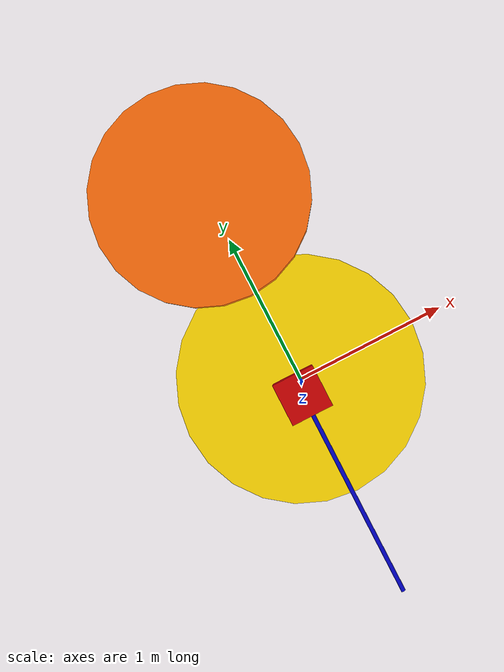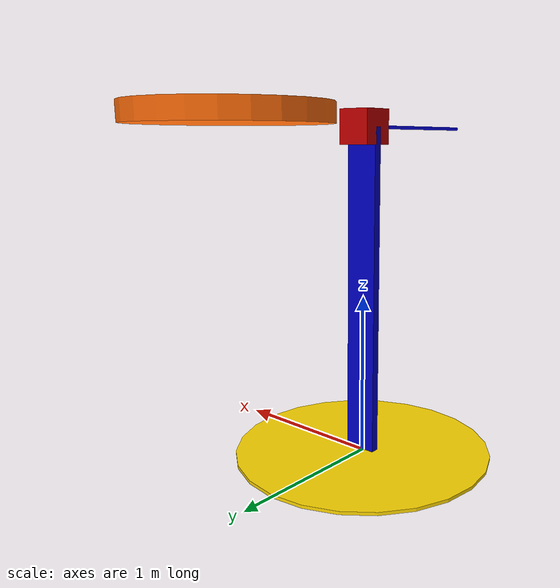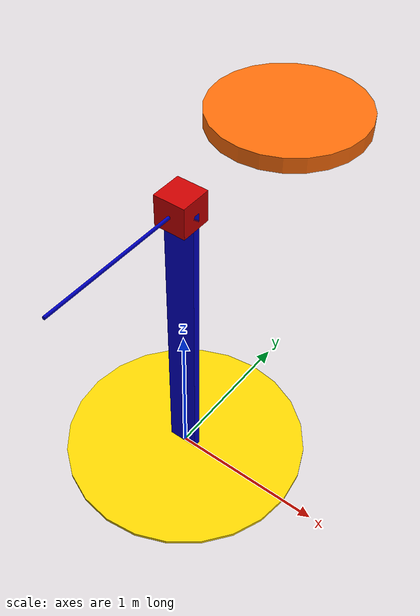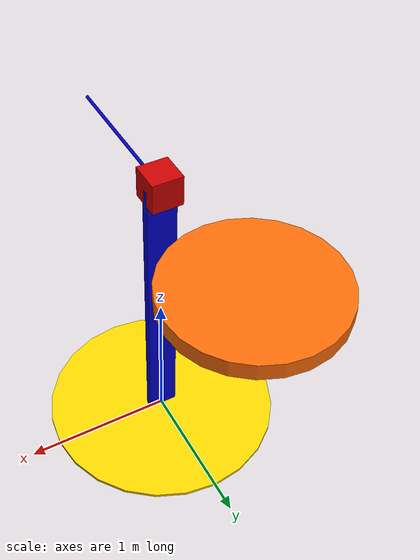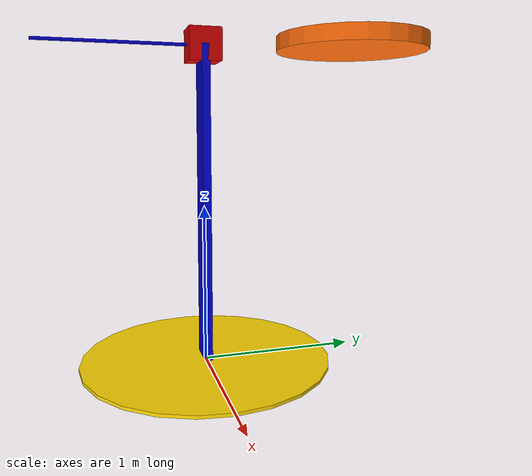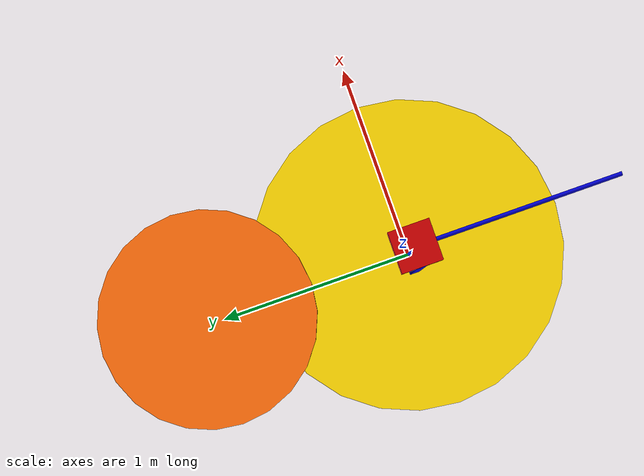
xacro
<?xml version="1.0"?>
<!-- Revolute-Revolute Manipulator -->
<robot name="spinner" xmlns:xacro="http://www.ros.org/wiki/xacro">

  <!-- Constants for robot dimensions -->
  <xacro:property name="PI" value="3.1415926535897931"/>
  <xacro:property name="mass" value="1" /> <!-- arbitrary value for mass -->
  <xacro:property name="width" value="0.1" /> <!-- Square dimensions (widthxwidth) of beams -->
  <xacro:property name="height1" value="2" /> <!-- Link 1 -->
  <xacro:property name="height2" value="1" /> <!-- Link 2 -->
  <xacro:property name="height3" value="1" /> <!-- Link 3 -->
  <xacro:property name="camera_link" value="0.05" /> <!-- Size of square 'camera' box -->
  <xacro:property name="axel_offset" value="0.05" /> <!-- Space btw top of beam and the each joint -->

  <!-- Import all Gazebo-customization elements, including Gazebo colors -->
  <xacro:include filename="$(find spinner_description)/urdf/spinner.gazebo" />
  <!-- Import Rviz colors -->
  <xacro:include filename="$(find spinner_description)/urdf/materials.xacro" />

  <!-- Used for fixing robot to Gazebo 'base_link' -->

  <link name="base">
    <collision>
      <origin xyz="0 0 0.01" rpy="0 0 0"/>
      <geometry>
	<cylinder radius="0.8" length="0.02"/>
      </geometry>
    </collision>

    <visual>
      <origin xyz="0 0 0.01" rpy="0 0 0"/>
      <geometry>
	<cylinder radius="0.8" length="0.02"/>
      </geometry>
      <material name="gold"/>
    </visual>

    <inertial>
      <origin xyz="0 0 0.01" rpy="0 0 0"/>
      <mass value="100"/>
      <inertia
	  ixx="10" ixy="0.0" ixz="0.0"
	  iyy="10" iyz="0.0"
	  izz="10"/>
    </inertial>
  </link>

  <joint name="basepole" type="fixed">
    <parent link="base"/>
    <child link="pole"/>
  </joint>

  <link name="pole">
    <collision>
      <origin xyz="0 0 1.0" rpy="0 0 0"/>
      <geometry>
	<box size="0.1 0.1 2.0"/>
      </geometry>
    </collision>

    <visual>
      <origin xyz="0 0 1.0" rpy="0 0 0"/>
      <geometry>
	<box size="0.2 0.05 2.0"/>
      </geometry>
      <material name="blue"/>
    </visual>

    <inertial>
      <origin xyz="0 0 1.0" rpy="0 0 0"/>
      <mass value="1"/>
      <inertia
	  ixx="1" ixy="0.0" ixz="0.0"
	  iyy="1" iyz="0.0"
	  izz="1"/>
    </inertial>
  </link>

  <joint name="polecam" type="fixed">
    <parent link="pole"/>
    <child link="camera_link"/>
  </joint>

  <link name="camera_link">
    <collision>
      <origin xyz="0 0 2.0" rpy="0 0 0"/>
      <geometry>
	<box size="0.1 0.1 0.1"/>
      </geometry>
    </collision>

    <visual>
      <origin xyz="0 0 2.0" rpy="0 0 0"/>
      <geometry>
	<box size="0.1 0.1 0.1"/>
      </geometry>
      <material name="grey"/>
    </visual>

    <inertial>
      <origin xyz="0 0 0" rpy="0 0 1.5707"/>
      <mass value="1"/>
      <inertia
	  ixx="1" ixy="0.0" ixz="0.0"
	  iyy="1" iyz="0.0"
	  izz="1"/>
    </inertial>
  </link>

  <link name="arm0">
    <collision>
      <origin xyz="0 0 0" rpy="0 0 0"/>
      <geometry>
	<box size="0.2 0.2 0.2"/>
      </geometry>
    </collision>

    <visual>
      <origin xyz="0 0 0.0" rpy="0 0 0"/>
      <geometry>
	<box size="0.2 0.2 0.2"/>
      </geometry>
      <material name="red"/>
    </visual>

    <inertial>
      <origin xyz="0 0 0" rpy="0 0 0"/>
      <mass value="1"/>
      <inertia
	  ixx="1" ixy="0.0" ixz="0.0"
	  iyy="1" iyz="0.0"
	  izz="1"/>
    </inertial>
  </link>

  <joint name="azimuth" type="continuous">
    <parent link="pole"/>
    <child link="arm0"/>
    <origin xyz="0 0 2.0" rpy="0 0 0"/>
    <axis xyz="0 0 1"/>
    <dynamics damping="0.7"/>
  </joint>

  <joint name="elevation" type="continuous">
    <parent link="arm0"/>
    <child link="arm"/>
    <origin xyz="0 0 0" rpy="0 0 0"/>
    <axis xyz="1 0 0"/>
    <dynamics damping="0.7"/>
  </joint>

  <joint name="spinner" type="continuous">
    <parent link="arm"/>
    <child link="barrel"/>
    <origin xyz="0 1.0 0" rpy="0 0 0"/>
    <axis xyz="0 0 1"/>
    <dynamics damping="0.7"/>
  </joint>

  <link name="arm">
    <collision>
      <origin xyz="0 -0.5 0" rpy="-1.5708 0 0"/>
      <geometry>
	<cylinder radius="0.01" length="1.0"/>
      </geometry>
    </collision>

    <visual>
      <origin xyz="0 -0.5 0" rpy="-1.5708 0 0"/>
      <geometry>
	<cylinder radius="0.01" length="1.0"/>
      </geometry>
      <material name="blue"/>
    </visual>

    <inertial>
      <origin xyz="0 -0.5 0" rpy="-1.5708 0 0"/>
      <mass value="1"/>
      <inertia
	  ixx="1" ixy="0.0" ixz="0.0"
	  iyy="1" iyz="0.0"
	  izz="1"/>
    </inertial>
  </link>

  <link name="barrel">
    <collision>
      <origin xyz="0 0 0.05" rpy="0 0 0"/>
      <geometry>
	<cylinder radius="0.5" length="0.1"/>
      </geometry>
    </collision>

    <visual>
      <origin xyz="0 0 0.05" rpy="0 0 0"/>
      <geometry>
	<cylinder radius="0.5" length="0.1"/>
      </geometry>
      <material name="orange"/>
    </visual>

    <inertial>
      <origin xyz="0 0 0.05" rpy="0 0 0"/>
      <mass value="1"/>
      <inertia
	  ixx="1" ixy="0.0" ixz="0.0"
	  iyy="1" iyz="0.0"
	  izz="1"/>
    </inertial>
  </link>

</robot>

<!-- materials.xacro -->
<robot>

  <material name="black">
    <color rgba="0.0 0.0 0.0 1.0"/>
  </material>

  <material name="blue">
    <color rgba="0.0 0.0 0.8 1.0"/>
  </material>

  <material name="green">
    <color rgba="0.0 0.8 0.0 1.0"/>
  </material>

  <material name="grey">
    <color rgba="0.2 0.2 0.2 1.0"/>
  </material>

  <material name="gold">
    <color rgba="${255/255} ${215/255} ${0/255} 1.0"/>
  </material>

  <material name="orange">
    <color rgba="${255/255} ${108/255} ${10/255} 1.0"/>
  </material>

  <material name="brown">
    <color rgba="${222/255} ${207/255} ${195/255} 1.0"/>
  </material>

  <material name="red">
    <color rgba="0.8 0.0 0.0 1.0"/>
  </material>

  <material name="white">
    <color rgba="1.0 1.0 1.0 1.0"/>
  </material>

</robot>
